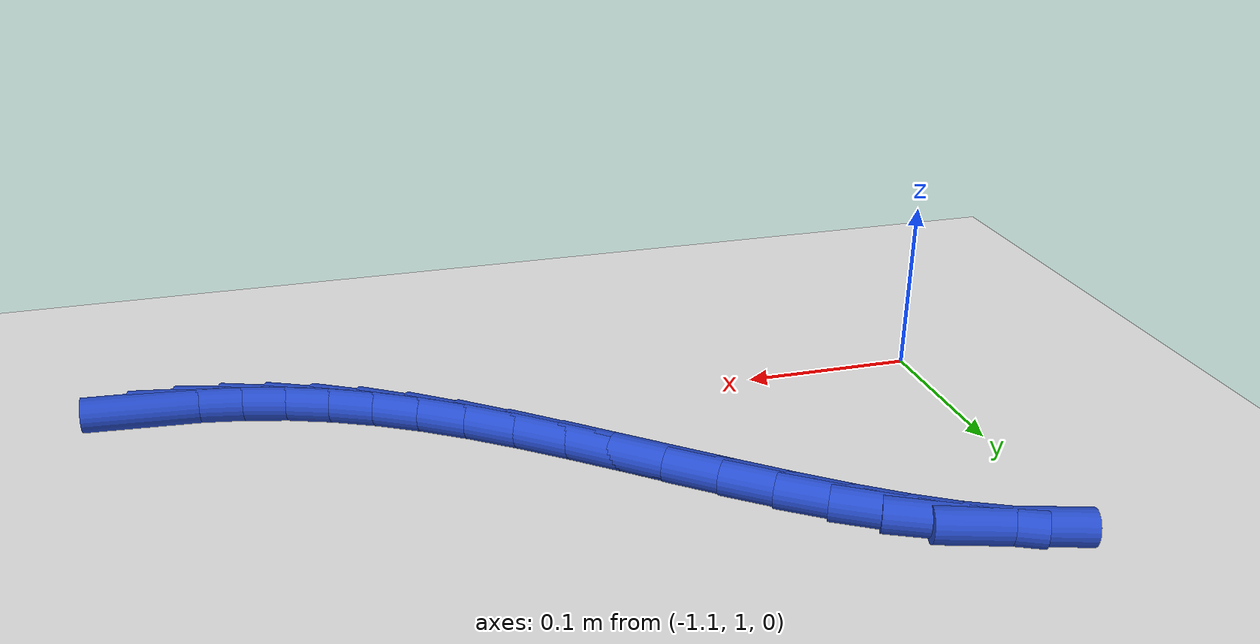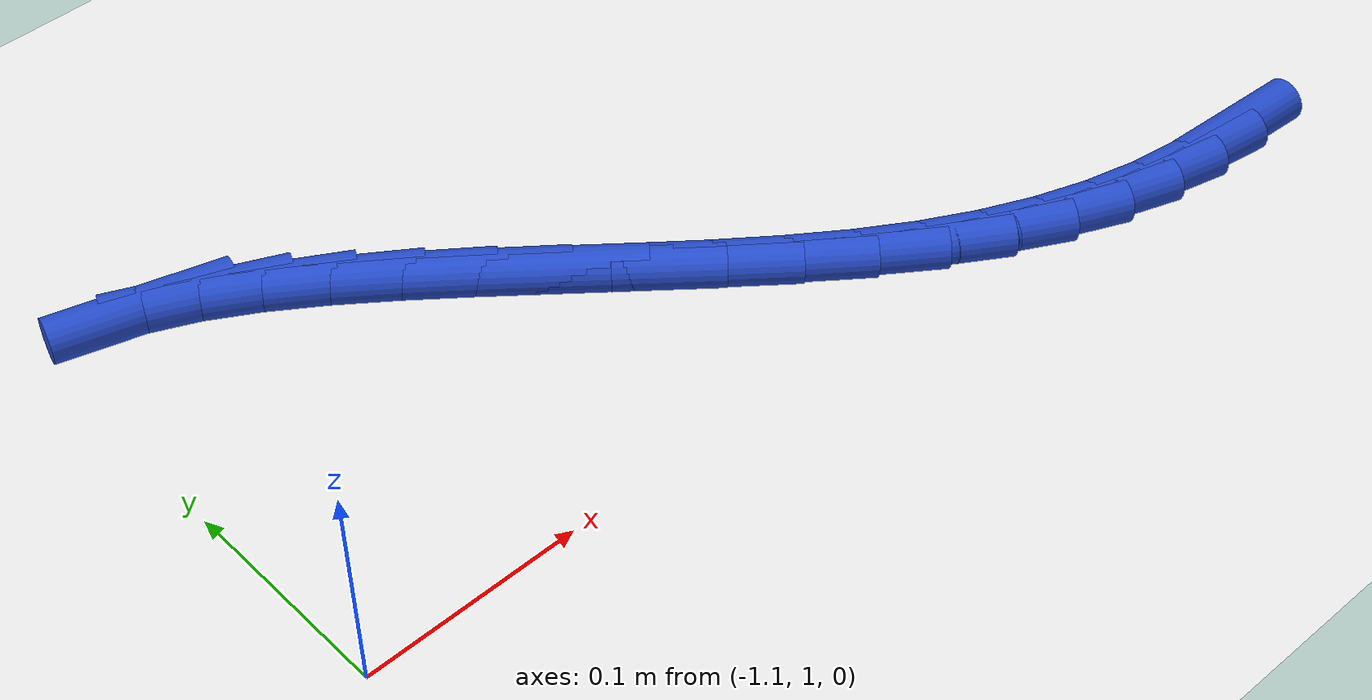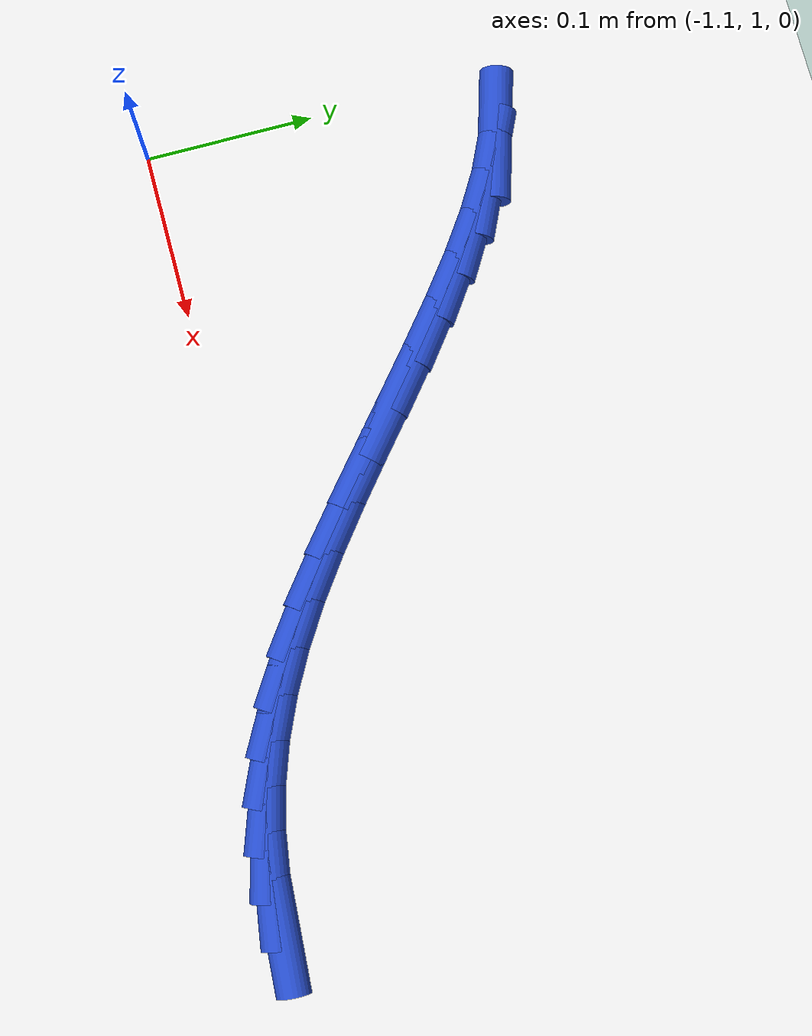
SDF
<sdf version="1.6">
 <world name="default">
  <model name="ground_plane">
   <static>1</static>
   <link name="link">
    <collision name="collision">
     <geometry><plane><normal>0 0 1</normal><size>100 100</size></plane></geometry>
     <surface><friction><ode><mu>100</mu><mu2>50</mu2></ode></friction></surface>
    </collision>
    <visual name="visual">
     <cast_shadows>0</cast_shadows>
     <geometry><plane><normal>0 0 1</normal><size>100 100</size></plane></geometry>
     <material>
      <script><uri>file://media/materials/scripts/gazebo.material</uri><name>Gazebo/WhiteGlow</name></script>
     </material>
    </visual>
   </link>
  </model>
  <model name="line">
   <link name="link_52">
    <pose>-0.6523306386119622 0.9664252788502613 0.01 0 1.57 -0.06630912293535449</pose>
    <collision name="collision">
     <geometry><cylinder><radius>0.01</radius><length>0.08</length></cylinder></geometry>
    </collision>
    <visual name="visual">
     <material>
      <script><name>Gazebo/Blue</name><uri>file://media/materials/scripts/gazebo.material</uri></script>
     </material>
     <geometry><cylinder><radius>0.01</radius><length>0.08</length></cylinder></geometry>
    </visual>
   </link>
   <link name="link_53">
    <pose>-0.6776420477516023 0.9681061204102857 0.01 0 1.57 -0.15911380259047758</pose>
    <collision name="collision">
     <geometry><cylinder><radius>0.01</radius><length>0.08</length></cylinder></geometry>
    </collision>
    <visual name="visual">
     <material>
      <script><name>Gazebo/Blue</name><uri>file://media/materials/scripts/gazebo.material</uri></script>
     </material>
     <geometry><cylinder><radius>0.01</radius><length>0.08</length></cylinder></geometry>
    </visual>
   </link>
   <link name="link_54">
    <pose>-0.7023310344374831 0.9720679698456581 0.01 0 1.57 -0.25247978371280994</pose>
    <collision name="collision">
     <geometry><cylinder><radius>0.01</radius><length>0.08</length></cylinder></geometry>
    </collision>
    <visual name="visual">
     <material>
      <script><name>Gazebo/Blue</name><uri>file://media/materials/scripts/gazebo.material</uri></script>
     </material>
     <geometry><cylinder><radius>0.01</radius><length>0.08</length></cylinder></geometry>
    </visual>
   </link>
   <link name="link_55">
    <pose>-0.7265602593668018 0.9783187480047648 0.01 0 1.57 -0.343040269392239</pose>
    <collision name="collision">
     <geometry><cylinder><radius>0.01</radius><length>0.08</length></cylinder></geometry>
    </collision>
    <visual name="visual">
     <material>
      <script><name>Gazebo/Blue</name><uri>file://media/materials/scripts/gazebo.material</uri></script>
     </material>
     <geometry><cylinder><radius>0.01</radius><length>0.08</length></cylinder></geometry>
    </visual>
   </link>
   <link name="link_56">
    <pose>-0.7504923832367556 0.9868663757359928 0.01 0 1.57 -0.427855078939923</pose>
    <collision name="collision">
     <geometry><cylinder><radius>0.01</radius><length>0.08</length></cylinder></geometry>
    </collision>
    <visual name="visual">
     <material>
      <script><name>Gazebo/Blue</name><uri>file://media/materials/scripts/gazebo.material</uri></script>
     </material>
     <geometry><cylinder><radius>0.01</radius><length>0.08</length></cylinder></geometry>
    </visual>
   </link>
   <link name="link_57">
    <pose>-0.7742900667445427 0.9977187738877286 0.01 0 1.57 -0.5048016494929995</pose>
    <collision name="collision">
     <geometry><cylinder><radius>0.01</radius><length>0.08</length></cylinder></geometry>
    </collision>
    <visual name="visual">
     <material>
      <script><name>Gazebo/Blue</name><uri>file://media/materials/scripts/gazebo.material</uri></script>
     </material>
     <geometry><cylinder><radius>0.01</radius><length>0.08</length></cylinder></geometry>
    </visual>
   </link>
   <link name="link_58">
    <pose>-0.7981159705873603 1.010883863308359 0.01 0 1.57 -0.5726924202510537</pose>
    <collision name="collision">
     <geometry><cylinder><radius>0.01</radius><length>0.08</length></cylinder></geometry>
    </collision>
    <visual name="visual">
     <material>
      <script><name>Gazebo/Blue</name><uri>file://media/materials/scripts/gazebo.material</uri></script>
     </material>
     <geometry><cylinder><radius>0.01</radius><length>0.08</length></cylinder></geometry>
    </visual>
   </link>
   <link name="link_59">
    <pose>-0.8221325474726502 1.026369120536926 0.01 0 1.57 -0.628336960581758</pose>
    <collision name="collision">
     <geometry><cylinder><radius>0.01</radius><length>0.08</length></cylinder></geometry>
    </collision>
    <visual name="visual">
     <material>
      <script><name>Gazebo/Blue</name><uri>file://media/materials/scripts/gazebo.material</uri></script>
     </material>
     <geometry><cylinder><radius>0.01</radius><length>0.08</length></cylinder></geometry>
    </visual>
   </link>
   <link name="link_60">
    <pose>-0.8464266349061412 1.044020492326438 0.01 0 1.57 -0.6668645390080629</pose>
    <collision name="collision">
     <geometry><cylinder><radius>0.01</radius><length>0.08</length></cylinder></geometry>
    </collision>
    <visual name="visual">
     <material>
      <script><name>Gazebo/Blue</name><uri>file://media/materials/scripts/gazebo.material</uri></script>
     </material>
     <geometry><cylinder><radius>0.01</radius><length>0.08</length></cylinder></geometry>
    </visual>
   </link>
   <link name="link_61">
    <pose>-0.870897369256108 1.0632829567902065 0.01 0 1.57 -0.6905305884854358</pose>
    <collision name="collision">
     <geometry><cylinder><radius>0.01</radius><length>0.08</length></cylinder></geometry>
    </collision>
    <visual name="visual">
     <material>
      <script><name>Gazebo/Blue</name><uri>file://media/materials/scripts/gazebo.material</uri></script>
     </material>
     <geometry><cylinder><radius>0.01</radius><length>0.08</length></cylinder></geometry>
    </visual>
   </link>
   <link name="link_62">
    <pose>-0.895415258543993 1.0835403359428561 0.01 0 1.57 -0.7012993268502032</pose>
    <collision name="collision">
     <geometry><cylinder><radius>0.01</radius><length>0.08</length></cylinder></geometry>
    </collision>
    <visual name="visual">
     <material>
      <script><name>Gazebo/Blue</name><uri>file://media/materials/scripts/gazebo.material</uri></script>
     </material>
     <geometry><cylinder><radius>0.01</radius><length>0.08</length></cylinder></geometry>
    </visual>
   </link>
   <link name="link_63">
    <pose>-0.9198508107912399 1.1041764517990122 0.01 0 1.57 -0.699886825276258</pose>
    <collision name="collision">
     <geometry><cylinder><radius>0.01</radius><length>0.08</length></cylinder></geometry>
    </collision>
    <visual name="visual">
     <material>
      <script><name>Gazebo/Blue</name><uri>file://media/materials/scripts/gazebo.material</uri></script>
     </material>
     <geometry><cylinder><radius>0.01</radius><length>0.08</length></cylinder></geometry>
    </visual>
   </link>
   <link name="link_64">
    <pose>-0.9440745340192912 1.124575126373299 0.01 0 1.57 -0.6858525999099303</pose>
    <collision name="collision">
     <geometry><cylinder><radius>0.01</radius><length>0.08</length></cylinder></geometry>
    </collision>
    <visual name="visual">
     <material>
      <script><name>Gazebo/Blue</name><uri>file://media/materials/scripts/gazebo.material</uri></script>
     </material>
     <geometry><cylinder><radius>0.01</radius><length>0.08</length></cylinder></geometry>
    </visual>
   </link>
   <link name="link_65">
    <pose>-0.9679569362495898 1.144120181680341 0.01 0 1.57 -0.6574735184225644</pose>
    <collision name="collision">
     <geometry><cylinder><radius>0.01</radius><length>0.08</length></cylinder></geometry>
    </collision>
    <visual name="visual">
     <material>
      <script><name>Gazebo/Blue</name><uri>file://media/materials/scripts/gazebo.material</uri></script>
     </material>
     <geometry><cylinder><radius>0.01</radius><length>0.08</length></cylinder></geometry>
    </visual>
   </link>
   <link name="link_66">
    <pose>-0.9913685255035795 1.1621954397347647 0.01 0 1.57 -0.6113548298505201</pose>
    <collision name="collision">
     <geometry><cylinder><radius>0.01</radius><length>0.08</length></cylinder></geometry>
    </collision>
    <visual name="visual">
     <material>
      <script><name>Gazebo/Blue</name><uri>file://media/materials/scripts/gazebo.material</uri></script>
     </material>
     <geometry><cylinder><radius>0.01</radius><length>0.08</length></cylinder></geometry>
    </visual>
   </link>
   <link name="link_67">
    <pose>-1.0141798098027022 1.1781847225511934 0.01 0 1.57 -0.5416917918737421</pose>
    <collision name="collision">
     <geometry><cylinder><radius>0.01</radius><length>0.08</length></cylinder></geometry>
    </collision>
    <visual name="visual">
     <material>
      <script><name>Gazebo/Blue</name><uri>file://media/materials/scripts/gazebo.material</uri></script>
     </material>
     <geometry><cylinder><radius>0.01</radius><length>0.08</length></cylinder></geometry>
    </visual>
   </link>
   <link name="link_68">
    <pose>-1.0362612971684018 1.1914718521442524 0.01 0 1.57 -0.4391433872743035</pose>
    <collision name="collision">
     <geometry><cylinder><radius>0.01</radius><length>0.08</length></cylinder></geometry>
    </collision>
    <visual name="visual">
     <material>
      <script><name>Gazebo/Blue</name><uri>file://media/materials/scripts/gazebo.material</uri></script>
     </material>
     <geometry><cylinder><radius>0.01</radius><length>0.08</length></cylinder></geometry>
    </visual>
   </link>
   <link name="link_69">
    <pose>-1.0574834956221202 1.2014406505285662 0.01 0 1.57 -0.28983564918691107</pose>
    <collision name="collision">
     <geometry><cylinder><radius>0.01</radius><length>0.08</length></cylinder></geometry>
    </collision>
    <visual name="visual">
     <material>
      <script><name>Gazebo/Blue</name><uri>file://media/materials/scripts/gazebo.material</uri></script>
     </material>
     <geometry><cylinder><radius>0.01</radius><length>0.08</length></cylinder></geometry>
    </visual>
   </link>
  </model>
 </world>
</sdf>
